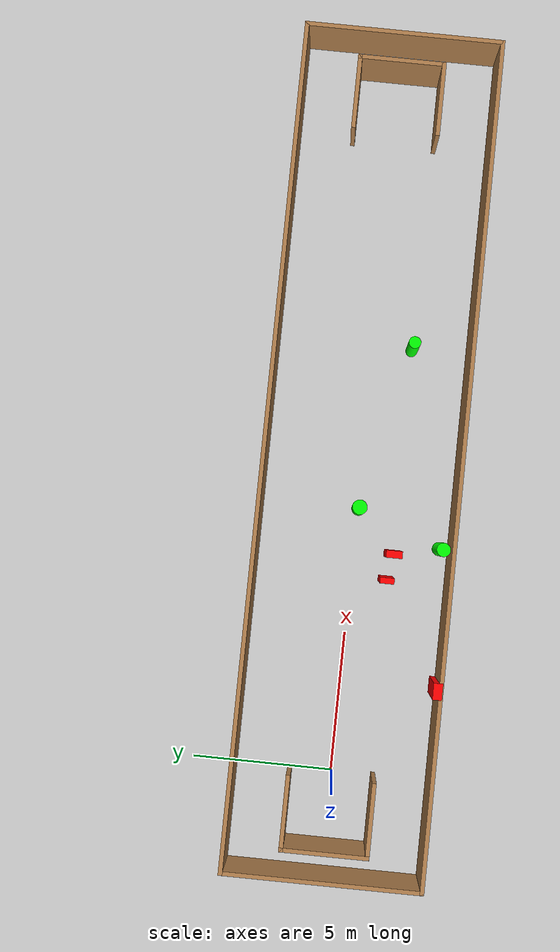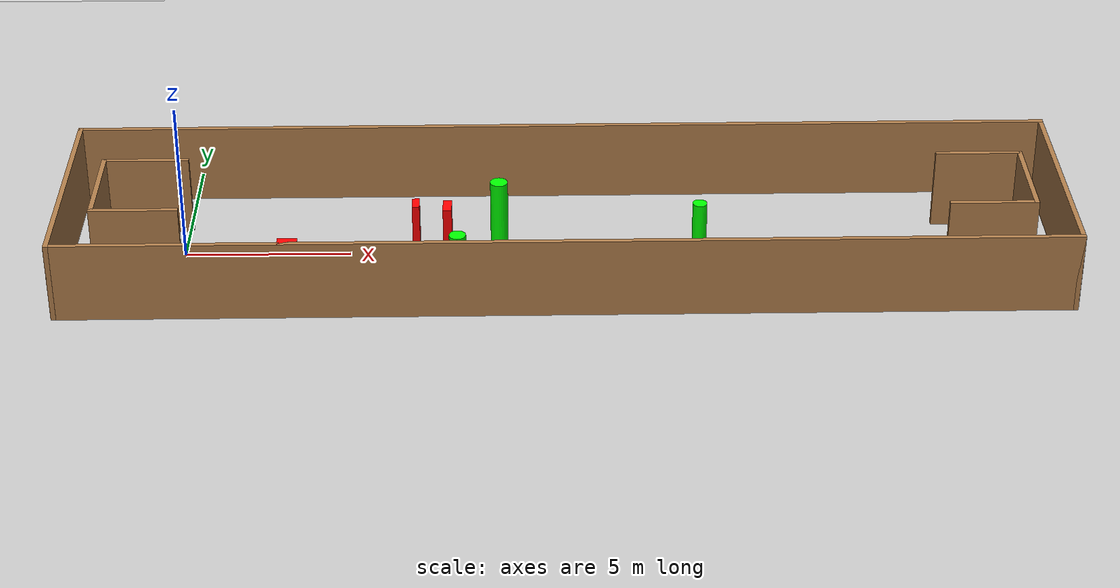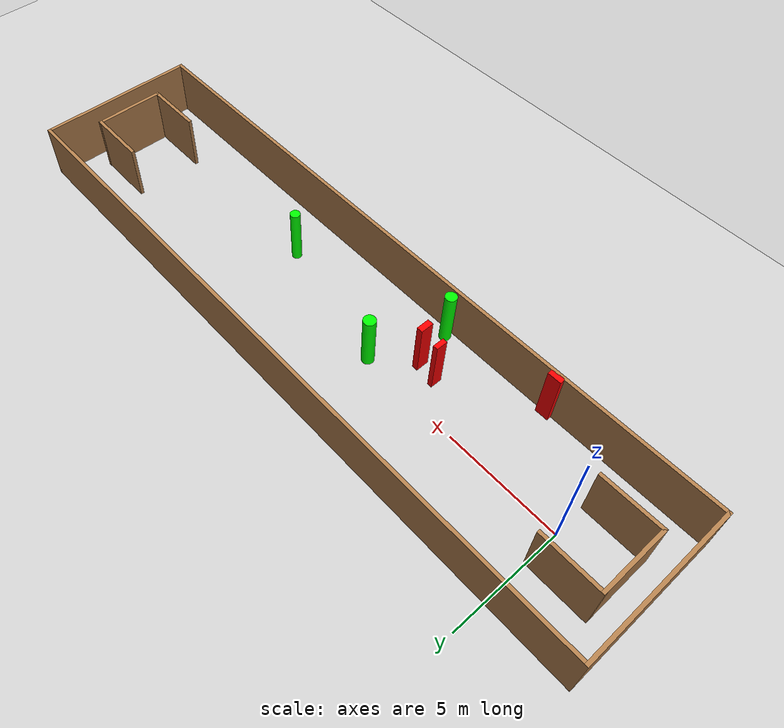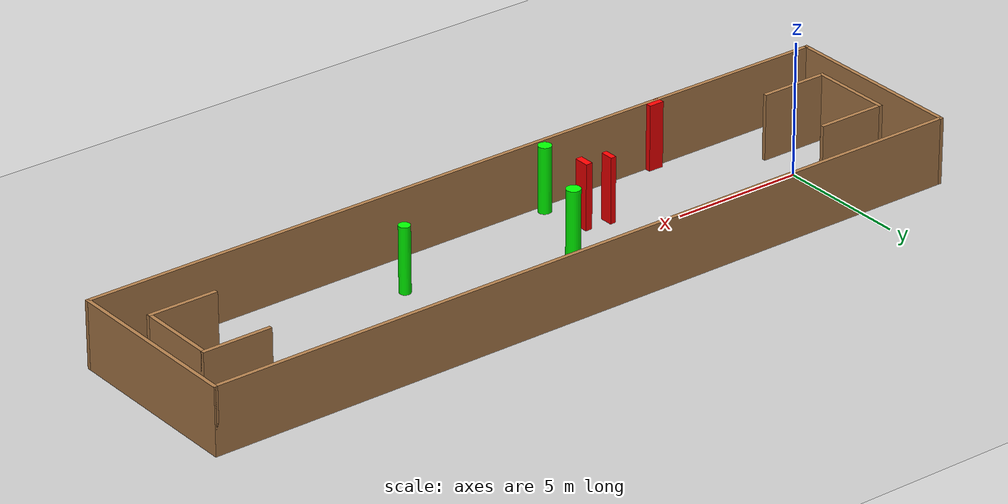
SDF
<sdf version="1.7">
 <world name="default">
  <light name="sun" type="directional">
   <pose>0 0 10 0 -0 0</pose>
   <diffuse>0.8 0.8 0.8 1</diffuse>
   <specular>0.2 0.2 0.2 1</specular>
   <attenuation>
    <range>1000</range>
    <constant>0.9</constant>
    <linear>0.01</linear>
    <quadratic>0.001</quadratic>
   </attenuation>
   <direction>-0.5 0.1 -0.9</direction>
   <spot><inner_angle>0</inner_angle><outer_angle>0</outer_angle><falloff>0</falloff></spot>
  </light>
  <model name="ground_plane">
   <static>1</static>
   <link name="link">
    <collision name="collision">
     <geometry><plane><normal>0 0 1</normal><size>100 100</size></plane></geometry>
     <surface>
      <contact><collide_bitmask>65535</collide_bitmask></contact>
      <friction><ode><mu>100</mu><mu2>50</mu2></ode></friction>
     </surface>
    </collision>
    <visual name="visual">
     <cast_shadows>0</cast_shadows>
     <geometry><plane><normal>0 0 1</normal><size>100 100</size></plane></geometry>
     <material>
      <script><uri>file://media/materials/scripts/gazebo.material</uri><name>Gazebo/Grey</name></script>
     </material>
    </visual>
   </link>
  </model>
  <gravity>0 0 -9.8</gravity>
  <magnetic_field>6e-06 2.3e-05 -4.2e-05</magnetic_field>
  <atmosphere type="adiabatic"/>
  <physics type="ode">
   <max_step_size>0.001</max_step_size>
   <real_time_factor>1</real_time_factor>
   <real_time_update_rate>1000</real_time_update_rate>
  </physics>
  <scene><ambient>0.4 0.4 0.4 1</ambient><background>0.7 0.7 0.7 1</background><shadows>1</shadows></scene>
  <spherical_coordinates>
   <surface_model>EARTH_WGS84</surface_model>
   <latitude_deg>0</latitude_deg>
   <longitude_deg>0</longitude_deg>
   <elevation>0</elevation>
   <heading_deg>0</heading_deg>
  </spherical_coordinates>
  <model name="my_base_walls">
   <link name="Wall_0">
    <collision name="Wall_0_Collision">
     <geometry><box><size>7.15 0.15 2.5</size></box></geometry>
     <pose>0 0 1.25 0 -0 0</pose>
    </collision>
    <visual name="Wall_0_Visual">
     <pose>0 0 1.25 0 -0 0</pose>
     <geometry><box><size>7.15 0.15 2.5</size></box></geometry>
     <material>
      <script><uri>file://media/materials/scripts/gazebo.material</uri><name>Gazebo/Wood</name></script>
      <ambient>1 1 1 1</ambient>
     </material>
     <meta><layer>0</layer></meta>
    </visual>
    <pose>-15 0 0 0 -0 1.5708</pose>
   </link>
   <link name="Wall_10">
    <collision name="Wall_10_Collision">
     <geometry><box><size>2.65 0.15 2.5</size></box></geometry>
     <pose>0 0 1.25 0 -0 0</pose>
    </collision>
    <visual name="Wall_10_Visual">
     <pose>0 0 1.25 0 -0 0</pose>
     <geometry><box><size>2.65 0.15 2.5</size></box></geometry>
     <material>
      <script><uri>file://media/materials/scripts/gazebo.material</uri><name>Gazebo/Wood</name></script>
      <ambient>1 1 1 1</ambient>
     </material>
     <meta><layer>0</layer></meta>
    </visual>
    <pose>-12.75 -1.5 0 0 -0 0</pose>
   </link>
   <link name="Wall_12">
    <collision name="Wall_12_Collision">
     <geometry><box><size>2.65 0.15 2.5</size></box></geometry>
     <pose>0 0 1.25 0 -0 0</pose>
    </collision>
    <visual name="Wall_12_Visual">
     <pose>0 0 1.25 0 -0 0</pose>
     <geometry><box><size>2.65 0.15 2.5</size></box></geometry>
     <material>
      <script><uri>file://media/materials/scripts/gazebo.material</uri><name>Gazebo/Wood</name></script>
      <ambient>1 1 1 1</ambient>
     </material>
     <meta><layer>0</layer></meta>
    </visual>
    <pose>-12.75 1.5 0 0 -0 0</pose>
   </link>
   <link name="Wall_14">
    <collision name="Wall_14_Collision">
     <geometry><box><size>3.15 0.15 2.5</size></box></geometry>
     <pose>0 0 1.25 0 -0 0</pose>
    </collision>
    <visual name="Wall_14_Visual">
     <pose>0 0 1.25 0 -0 0</pose>
     <geometry><box><size>3.15 0.15 2.5</size></box></geometry>
     <material>
      <script><uri>file://media/materials/scripts/gazebo.material</uri><name>Gazebo/Wood</name></script>
      <ambient>1 1 1 1</ambient>
     </material>
     <meta><layer>0</layer></meta>
    </visual>
    <pose>14 0 0 0 -0 -1.5708</pose>
   </link>
   <link name="Wall_15">
    <collision name="Wall_15_Collision">
     <geometry><box><size>2.65 0.15 2.5</size></box></geometry>
     <pose>0 0 1.25 0 -0 0</pose>
    </collision>
    <visual name="Wall_15_Visual">
     <pose>0 0 1.25 0 -0 0</pose>
     <geometry><box><size>2.65 0.15 2.5</size></box></geometry>
     <material>
      <script><uri>file://media/materials/scripts/gazebo.material</uri><name>Gazebo/Wood</name></script>
      <ambient>1 1 1 1</ambient>
     </material>
     <meta><layer>0</layer></meta>
    </visual>
    <pose>12.75 -1.5 0 0 -0 3.14159</pose>
   </link>
   <link name="Wall_17">
    <collision name="Wall_17_Collision">
     <geometry><box><size>2.65 0.15 2.5</size></box></geometry>
     <pose>0 0 1.25 0 -0 0</pose>
    </collision>
    <visual name="Wall_17_Visual">
     <pose>0 0 1.25 0 -0 0</pose>
     <geometry><box><size>2.65 0.15 2.5</size></box></geometry>
     <material>
      <script><uri>file://media/materials/scripts/gazebo.material</uri><name>Gazebo/Wood</name></script>
      <ambient>1 1 1 1</ambient>
     </material>
     <meta><layer>0</layer></meta>
    </visual>
    <pose>12.75 1.5 0 0 -0 3.14159</pose>
   </link>
   <link name="Wall_2">
    <collision name="Wall_2_Collision">
     <geometry><box><size>30.15 0.15 2.5</size></box></geometry>
     <pose>0 0 1.25 0 -0 0</pose>
    </collision>
    <visual name="Wall_2_Visual">
     <pose>0 0 1.25 0 -0 0</pose>
     <geometry><box><size>30.15 0.15 2.5</size></box></geometry>
     <material>
      <script><uri>file://media/materials/scripts/gazebo.material</uri><name>Gazebo/Wood</name></script>
      <ambient>1 1 1 1</ambient>
     </material>
     <meta><layer>0</layer></meta>
    </visual>
    <pose>-0 -3.5 0 0 -0 0</pose>
   </link>
   <link name="Wall_4">
    <collision name="Wall_4_Collision">
     <geometry><box><size>30.15 0.15 2.5</size></box></geometry>
     <pose>0 0 1.25 0 -0 0</pose>
    </collision>
    <visual name="Wall_4_Visual">
     <pose>0 0 1.25 0 -0 0</pose>
     <geometry><box><size>30.15 0.15 2.5</size></box></geometry>
     <material>
      <script><uri>file://media/materials/scripts/gazebo.material</uri><name>Gazebo/Wood</name></script>
      <ambient>1 1 1 1</ambient>
     </material>
     <meta><layer>0</layer></meta>
    </visual>
    <pose>-0 3.5 0 0 -0 0</pose>
   </link>
   <link name="Wall_6">
    <collision name="Wall_6_Collision">
     <geometry><box><size>7.15 0.15 2.5</size></box></geometry>
     <pose>0 0 1.25 0 -0 0</pose>
    </collision>
    <visual name="Wall_6_Visual">
     <pose>0 0 1.25 0 -0 0</pose>
     <geometry><box><size>7.15 0.15 2.5</size></box></geometry>
     <material>
      <script><uri>file://media/materials/scripts/gazebo.material</uri><name>Gazebo/Wood</name></script>
      <ambient>1 1 1 1</ambient>
     </material>
     <meta><layer>0</layer></meta>
    </visual>
    <pose>15 0 0 0 -0 -1.5708</pose>
   </link>
   <link name="Wall_9">
    <collision name="Wall_9_Collision">
     <geometry><box><size>3.15 0.15 2.5</size></box></geometry>
     <pose>0 0 1.25 0 -0 0</pose>
    </collision>
    <visual name="Wall_9_Visual">
     <pose>0 0 1.25 0 -0 0</pose>
     <geometry><box><size>3.15 0.15 2.5</size></box></geometry>
     <material>
      <script><uri>file://media/materials/scripts/gazebo.material</uri><name>Gazebo/Wood</name></script>
      <ambient>1 1 1 1</ambient>
     </material>
     <meta><layer>0</layer></meta>
    </visual>
    <pose>-14 0 0 0 -0 -1.5708</pose>
   </link>
   <static>1</static>
   <pose>11.5 0 0 0 -0 0</pose>
  </model>
  <model name="cylinder1">
   <static>1</static>
   <link name="link">
    <inertial>
     <mass>1</mass>
     <inertia><ixx>0.5</ixx><ixy>0</ixy><ixz>0</ixz><iyy>0.5</iyy><iyz>0</iyz><izz>1</izz></inertia>
    </inertial>
    <collision name="collision">
     <geometry><cylinder><radius>0.26383421682029856</radius><length>2.5</length></cylinder></geometry>
    </collision>
    <visual name="visual">
     <geometry><cylinder><radius>0.26383421682029856</radius><length>2.5</length></cylinder></geometry>
     <material>
      <ambient>0 1 0 1</ambient>
      <diffuse>0 1 0 1</diffuse>
      <specular>0.1 0.1 0.1 1</specular>
      <emissive>0 0 0 0</emissive>
     </material>
    </visual>
   </link>
   <pose>9.542554285971596 -0.06155923133438801 1.25 0 0 0</pose>
  </model>
  <model name="cylinder2">
   <static>1</static>
   <link name="link">
    <inertial>
     <mass>1</mass>
     <inertia><ixx>0.5</ixx><ixy>0</ixy><ixz>0</ixz><iyy>0.5</iyy><iyz>0</iyz><izz>1</izz></inertia>
    </inertial>
    <collision name="collision">
     <geometry><cylinder><radius>0.21443318068084383</radius><length>2.5</length></cylinder></geometry>
    </collision>
    <visual name="visual">
     <geometry><cylinder><radius>0.21443318068084383</radius><length>2.5</length></cylinder></geometry>
     <material>
      <ambient>0 1 0 1</ambient>
      <diffuse>0 1 0 1</diffuse>
      <specular>0.1 0.1 0.1 1</specular>
      <emissive>0 0 0 0</emissive>
     </material>
    </visual>
   </link>
   <pose>15.502829952933608 -1.4237572394195324 1.25 0 0 0</pose>
  </model>
  <model name="cylinder3">
   <static>1</static>
   <link name="link">
    <inertial>
     <mass>1</mass>
     <inertia><ixx>0.5</ixx><ixy>0</ixy><ixz>0</ixz><iyy>0.5</iyy><iyz>0</iyz><izz>1</izz></inertia>
    </inertial>
    <collision name="collision">
     <geometry><cylinder><radius>0.24652847296583427</radius><length>2.5</length></cylinder></geometry>
    </collision>
    <visual name="visual">
     <geometry><cylinder><radius>0.24652847296583427</radius><length>2.5</length></cylinder></geometry>
     <material>
      <ambient>0 1 0 1</ambient>
      <diffuse>0 1 0 1</diffuse>
      <specular>0.1 0.1 0.1 1</specular>
      <emissive>0 0 0 0</emissive>
     </material>
    </visual>
   </link>
   <pose>8.351096991110907 -3.1226627945631984 1.25 0 0 0</pose>
  </model>
  <model name="box1">
   <static>1</static>
   <link name="link">
    <inertial>
     <mass>1</mass>
     <inertia><ixx>0.083</ixx><ixy>0</ixy><ixz>0</ixz><iyy>0.083</iyy><iyz>0</iyz><izz>0.083</izz></inertia>
    </inertial>
    <collision name="collision">
     <geometry><box><size>0.2604841294184002 0.5730911595948722 2.5</size></box></geometry>
    </collision>
    <visual name="visual">
     <geometry><box><size>0.2604841294184002 0.5730911595948722 2.5</size></box></geometry>
     <material>
      <ambient>1 0 0 1</ambient>
      <diffuse>1 0 0 1</diffuse>
      <specular>0.1 0.1 0.1 1</specular>
      <emissive>0 0 0 0</emissive>
     </material>
    </visual>
    <sensor name="my_contact" type="contact">
     <contact><collision>box_collision</collision><topic>__default_topic__</topic></contact>
    </sensor>
   </link>
   <pose>8.022599992317357 -1.4211190186200988 1.25 0 0 0</pose>
  </model>
  <model name="box2">
   <static>1</static>
   <link name="link">
    <inertial>
     <mass>1</mass>
     <inertia><ixx>0.083</ixx><ixy>0</ixy><ixz>0</ixz><iyy>0.083</iyy><iyz>0</iyz><izz>0.083</izz></inertia>
    </inertial>
    <collision name="collision">
     <geometry><box><size>0.2127070660159871 0.5030349485166155 2.5</size></box></geometry>
    </collision>
    <visual name="visual">
     <geometry><box><size>0.2127070660159871 0.5030349485166155 2.5</size></box></geometry>
     <material>
      <ambient>1 0 0 1</ambient>
      <diffuse>1 0 0 1</diffuse>
      <specular>0.1 0.1 0.1 1</specular>
      <emissive>0 0 0 0</emissive>
     </material>
    </visual>
    <sensor name="my_contact" type="contact">
     <contact><collision>box_collision</collision><topic>__default_topic__</topic></contact>
    </sensor>
   </link>
   <pose>7.0876480999752225 -1.260741434832052 1.25 0 0 0</pose>
  </model>
  <model name="box3">
   <static>1</static>
   <link name="link">
    <inertial>
     <mass>1</mass>
     <inertia><ixx>0.083</ixx><ixy>0</ixy><ixz>0</ixz><iyy>0.083</iyy><iyz>0</iyz><izz>0.083</izz></inertia>
    </inertial>
    <collision name="collision">
     <geometry><box><size>0.5803209006409235 0.32567115914539846 2.5</size></box></geometry>
    </collision>
    <visual name="visual">
     <geometry><box><size>0.5803209006409235 0.32567115914539846 2.5</size></box></geometry>
     <material>
      <ambient>1 0 0 1</ambient>
      <diffuse>1 0 0 1</diffuse>
      <specular>0.1 0.1 0.1 1</specular>
      <emissive>0 0 0 0</emissive>
     </material>
    </visual>
    <sensor name="my_contact" type="contact">
     <contact><collision>box_collision</collision><topic>__default_topic__</topic></contact>
    </sensor>
   </link>
   <pose>3.433123711077032 -3.383344793666622 1.25 0 0 0</pose>
  </model>
 </world>
</sdf>
